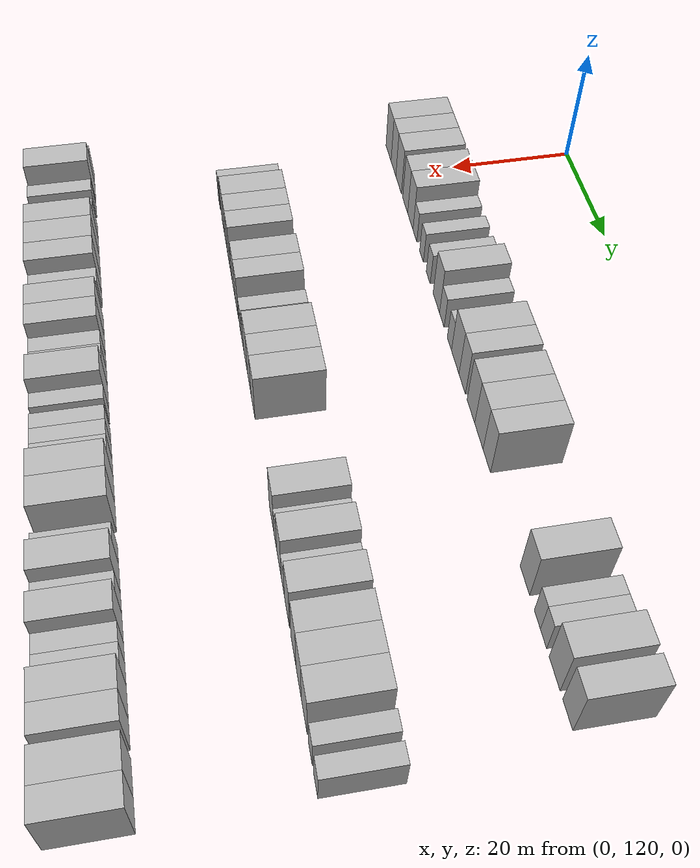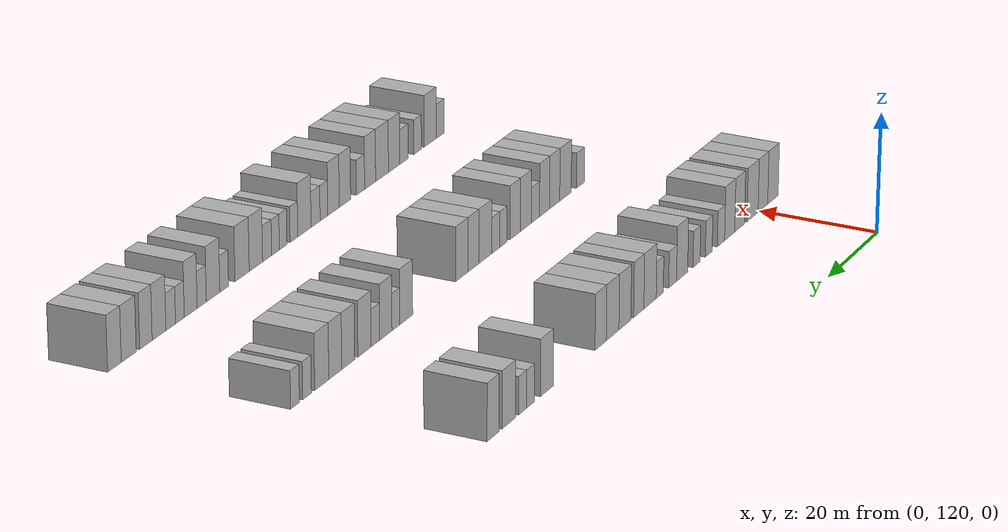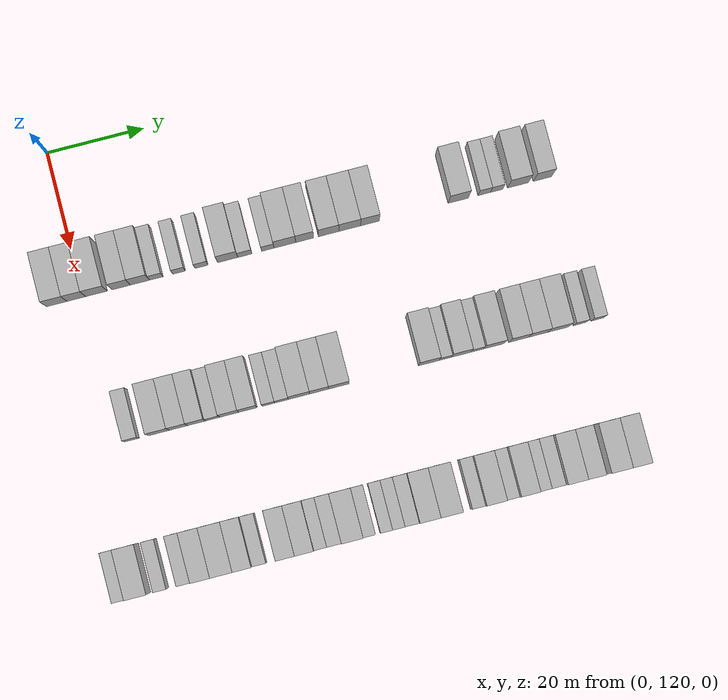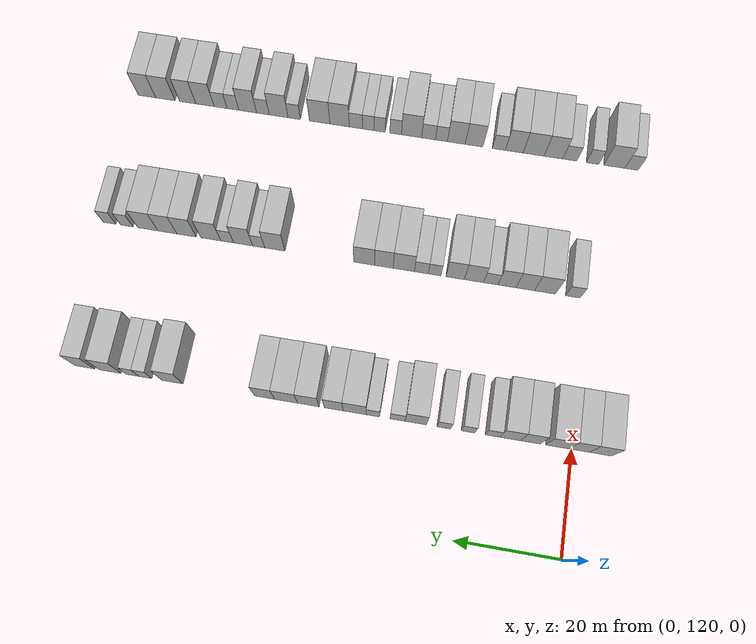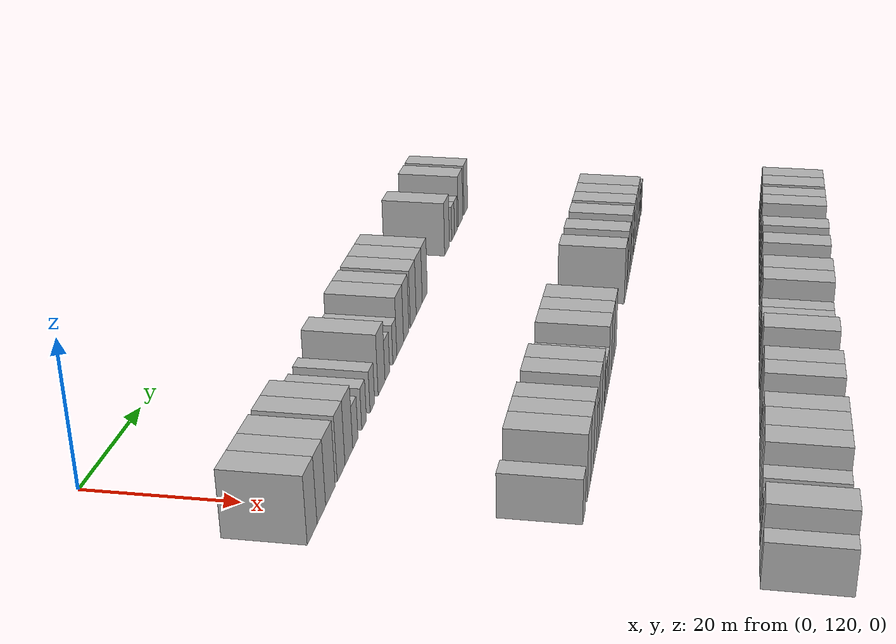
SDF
<sdf version="1.6">
 <world name="default">
  <model name="building_145">
   <static>1</static>
   <pose>25.0000 114.6661 0 0.000000 0.000000 0.000000</pose>
   <link name="link">
    <pose>0 0 4.50 0 0 0</pose>
    <collision name="collision"><geometry><box><size>10.0000 4.2118 9.0000</size></box></geometry></collision>
    <visual name="visual">
     <cast_shadows>0</cast_shadows>
     <geometry><box><size>10.0000 4.2118 9.0000</size></box></geometry>
     <material>
      <script>
       <uri>model://HANNAS_wall/materials/scripts</uri>
       <uri>model://HANNAS_wall/materials/textures</uri>
       <name>vrc/HANNAS_wall</name>
      </script>
     </material>
    </visual>
   </link>
  </model>
  <model name="building_146">
   <static>1</static>
   <pose>25.0000 118.6815 0 0.000000 0.000000 0.000000</pose>
   <link name="link">
    <pose>0 0 4.50 0 0 0</pose>
    <collision name="collision"><geometry><box><size>10.0000 3.8190 9.0000</size></box></geometry></collision>
    <visual name="visual">
     <cast_shadows>0</cast_shadows>
     <geometry><box><size>10.0000 3.8190 9.0000</size></box></geometry>
     <material>
      <script>
       <uri>model://HANNAS_wall/materials/scripts</uri>
       <uri>model://HANNAS_wall/materials/textures</uri>
       <name>vrc/HANNAS_wall</name>
      </script>
     </material>
    </visual>
   </link>
  </model>
  <model name="building_147">
   <static>1</static>
   <pose>25.0000 122.7910 0 0.000000 0.000000 0.000000</pose>
   <link name="link">
    <pose>0 0 4.50 0 0 0</pose>
    <collision name="collision"><geometry><box><size>10.0000 4.3998 9.0000</size></box></geometry></collision>
    <visual name="visual">
     <cast_shadows>0</cast_shadows>
     <geometry><box><size>10.0000 4.3998 9.0000</size></box></geometry>
     <material>
      <script>
       <uri>model://HANNAS_wall/materials/scripts</uri>
       <uri>model://HANNAS_wall/materials/textures</uri>
       <name>vrc/HANNAS_wall</name>
      </script>
     </material>
    </visual>
   </link>
  </model>
  <model name="building_148">
   <static>1</static>
   <pose>25.0000 127.8787 0 0.000000 0.000000 0.000000</pose>
   <link name="link">
    <pose>0 0 4.50 0 0 0</pose>
    <collision name="collision"><geometry><box><size>10.0000 3.7756 9.0000</size></box></geometry></collision>
    <visual name="visual">
     <cast_shadows>0</cast_shadows>
     <geometry><box><size>10.0000 3.7756 9.0000</size></box></geometry>
     <material>
      <script>
       <uri>model://HANNAS_wall/materials/scripts</uri>
       <uri>model://HANNAS_wall/materials/textures</uri>
       <name>vrc/HANNAS_wall</name>
      </script>
     </material>
    </visual>
   </link>
  </model>
  <model name="building_149">
   <static>1</static>
   <pose>25.0000 131.7306 0 0.000000 0.000000 0.000000</pose>
   <link name="link">
    <pose>0 0 4.50 0 0 0</pose>
    <collision name="collision"><geometry><box><size>10.0000 3.9283 9.0000</size></box></geometry></collision>
    <visual name="visual">
     <cast_shadows>0</cast_shadows>
     <geometry><box><size>10.0000 3.9283 9.0000</size></box></geometry>
     <material>
      <script>
       <uri>model://HANNAS_wall/materials/scripts</uri>
       <uri>model://HANNAS_wall/materials/textures</uri>
       <name>vrc/HANNAS_wall</name>
      </script>
     </material>
    </visual>
   </link>
  </model>
  <model name="building_150">
   <static>1</static>
   <pose>25.0000 135.0770 0 0.000000 0.000000 0.000000</pose>
   <link name="link">
    <pose>0 0 3.00 0 0 0</pose>
    <collision name="collision"><geometry><box><size>10.0000 2.7645 6.0000</size></box></geometry></collision>
    <visual name="visual">
     <cast_shadows>0</cast_shadows>
     <geometry><box><size>10.0000 2.7645 6.0000</size></box></geometry>
     <material>
      <script>
       <uri>model://HANNAS_wall/materials/scripts</uri>
       <uri>model://HANNAS_wall/materials/textures</uri>
       <name>vrc/HANNAS_wall</name>
      </script>
     </material>
    </visual>
   </link>
  </model>
  <model name="building_151">
   <static>1</static>
   <pose>25.0000 139.7506 0 0.000000 0.000000 0.000000</pose>
   <link name="link">
    <pose>0 0 3.00 0 0 0</pose>
    <collision name="collision"><geometry><box><size>10.0000 2.5826 6.0000</size></box></geometry></collision>
    <visual name="visual">
     <cast_shadows>0</cast_shadows>
     <geometry><box><size>10.0000 2.5826 6.0000</size></box></geometry>
     <material>
      <script>
       <uri>model://HANNAS_wall/materials/scripts</uri>
       <uri>model://HANNAS_wall/materials/textures</uri>
       <name>vrc/HANNAS_wall</name>
      </script>
     </material>
    </visual>
   </link>
  </model>
  <model name="building_152">
   <static>1</static>
   <pose>25.0000 144.3665 0 0.000000 0.000000 0.000000</pose>
   <link name="link">
    <pose>0 0 3.00 0 0 0</pose>
    <collision name="collision"><geometry><box><size>10.0000 2.6494 6.0000</size></box></geometry></collision>
    <visual name="visual">
     <cast_shadows>0</cast_shadows>
     <geometry><box><size>10.0000 2.6494 6.0000</size></box></geometry>
     <material>
      <script>
       <uri>model://HANNAS_wall/materials/scripts</uri>
       <uri>model://HANNAS_wall/materials/textures</uri>
       <name>vrc/HANNAS_wall</name>
      </script>
     </material>
    </visual>
   </link>
  </model>
  <model name="building_153">
   <static>1</static>
   <pose>25.0000 149.7480 0 0.000000 0.000000 0.000000</pose>
   <link name="link">
    <pose>0 0 4.50 0 0 0</pose>
    <collision name="collision"><geometry><box><size>10.0000 4.1134 9.0000</size></box></geometry></collision>
    <visual name="visual">
     <cast_shadows>0</cast_shadows>
     <geometry><box><size>10.0000 4.1134 9.0000</size></box></geometry>
     <material>
      <script>
       <uri>model://HANNAS_wall/materials/scripts</uri>
       <uri>model://HANNAS_wall/materials/textures</uri>
       <name>vrc/HANNAS_wall</name>
      </script>
     </material>
    </visual>
   </link>
  </model>
  <model name="building_154">
   <static>1</static>
   <pose>25.0000 153.2562 0 0.000000 0.000000 0.000000</pose>
   <link name="link">
    <pose>0 0 3.00 0 0 0</pose>
    <collision name="collision"><geometry><box><size>10.0000 2.9031 6.0000</size></box></geometry></collision>
    <visual name="visual">
     <cast_shadows>0</cast_shadows>
     <geometry><box><size>10.0000 2.9031 6.0000</size></box></geometry>
     <material>
      <script>
       <uri>model://HANNAS_wall/materials/scripts</uri>
       <uri>model://HANNAS_wall/materials/textures</uri>
       <name>vrc/HANNAS_wall</name>
      </script>
     </material>
    </visual>
   </link>
  </model>
  <model name="building_155">
   <static>1</static>
   <pose>25.0000 157.9871 0 0.000000 0.000000 0.000000</pose>
   <link name="link">
    <pose>0 0 3.00 0 0 0</pose>
    <collision name="collision"><geometry><box><size>10.0000 2.5587 6.0000</size></box></geometry></collision>
    <visual name="visual">
     <cast_shadows>0</cast_shadows>
     <geometry><box><size>10.0000 2.5587 6.0000</size></box></geometry>
     <material>
      <script>
       <uri>model://HANNAS_wall/materials/scripts</uri>
       <uri>model://HANNAS_wall/materials/textures</uri>
       <name>vrc/HANNAS_wall</name>
      </script>
     </material>
    </visual>
   </link>
  </model>
  <model name="building_156">
   <static>1</static>
   <pose>25.0000 161.5023 0 0.000000 0.000000 0.000000</pose>
   <link name="link">
    <pose>0 0 4.50 0 0 0</pose>
    <collision name="collision"><geometry><box><size>10.0000 4.4717 9.0000</size></box></geometry></collision>
    <visual name="visual">
     <cast_shadows>0</cast_shadows>
     <geometry><box><size>10.0000 4.4717 9.0000</size></box></geometry>
     <material>
      <script>
       <uri>model://HANNAS_wall/materials/scripts</uri>
       <uri>model://HANNAS_wall/materials/textures</uri>
       <name>vrc/HANNAS_wall</name>
      </script>
     </material>
    </visual>
   </link>
  </model>
  <model name="building_157">
   <static>1</static>
   <pose>25.0000 165.5705 0 0.000000 0.000000 0.000000</pose>
   <link name="link">
    <pose>0 0 4.50 0 0 0</pose>
    <collision name="collision"><geometry><box><size>10.0000 3.6647 9.0000</size></box></geometry></collision>
    <visual name="visual">
     <cast_shadows>0</cast_shadows>
     <geometry><box><size>10.0000 3.6647 9.0000</size></box></geometry>
     <material>
      <script>
       <uri>model://HANNAS_wall/materials/scripts</uri>
       <uri>model://HANNAS_wall/materials/textures</uri>
       <name>vrc/HANNAS_wall</name>
      </script>
     </material>
    </visual>
   </link>
  </model>
  <model name="building_158">
   <static>1</static>
   <pose>25.0000 170.4959 0 0.000000 0.000000 0.000000</pose>
   <link name="link">
    <pose>0 0 4.50 0 0 0</pose>
    <collision name="collision"><geometry><box><size>10.0000 4.1862 9.0000</size></box></geometry></collision>
    <visual name="visual">
     <cast_shadows>0</cast_shadows>
     <geometry><box><size>10.0000 4.1862 9.0000</size></box></geometry>
     <material>
      <script>
       <uri>model://HANNAS_wall/materials/scripts</uri>
       <uri>model://HANNAS_wall/materials/textures</uri>
       <name>vrc/HANNAS_wall</name>
      </script>
     </material>
    </visual>
   </link>
  </model>
  <model name="building_159">
   <static>1</static>
   <pose>25.0000 174.8231 0 0.000000 0.000000 0.000000</pose>
   <link name="link">
    <pose>0 0 4.50 0 0 0</pose>
    <collision name="collision"><geometry><box><size>10.0000 4.4682 9.0000</size></box></geometry></collision>
    <visual name="visual">
     <cast_shadows>0</cast_shadows>
     <geometry><box><size>10.0000 4.4682 9.0000</size></box></geometry>
     <material>
      <script>
       <uri>model://HANNAS_wall/materials/scripts</uri>
       <uri>model://HANNAS_wall/materials/textures</uri>
       <name>vrc/HANNAS_wall</name>
      </script>
     </material>
    </visual>
   </link>
  </model>
  <model name="building_160">
   <static>1</static>
   <pose>25.0000 178.9884 0 0.000000 0.000000 0.000000</pose>
   <link name="link">
    <pose>0 0 4.50 0 0 0</pose>
    <collision name="collision"><geometry><box><size>10.0000 3.8625 9.0000</size></box></geometry></collision>
    <visual name="visual">
     <cast_shadows>0</cast_shadows>
     <geometry><box><size>10.0000 3.8625 9.0000</size></box></geometry>
     <material>
      <script>
       <uri>model://HANNAS_wall/materials/scripts</uri>
       <uri>model://HANNAS_wall/materials/textures</uri>
       <name>vrc/HANNAS_wall</name>
      </script>
     </material>
    </visual>
   </link>
  </model>
  <model name="building_161">
   <static>1</static>
   <pose>25.0000 197.2277 0 0.000000 0.000000 0.000000</pose>
   <link name="link">
    <pose>0 0 4.50 0 0 0</pose>
    <collision name="collision"><geometry><box><size>10.0000 4.2054 9.0000</size></box></geometry></collision>
    <visual name="visual">
     <cast_shadows>0</cast_shadows>
     <geometry><box><size>10.0000 4.2054 9.0000</size></box></geometry>
     <material>
      <script>
       <uri>model://HANNAS_wall/materials/scripts</uri>
       <uri>model://HANNAS_wall/materials/textures</uri>
       <name>vrc/HANNAS_wall</name>
      </script>
     </material>
    </visual>
   </link>
  </model>
  <model name="building_162">
   <static>1</static>
   <pose>25.0000 202.6130 0 0.000000 0.000000 0.000000</pose>
   <link name="link">
    <pose>0 0 3.00 0 0 0</pose>
    <collision name="collision"><geometry><box><size>10.0000 2.5653 6.0000</size></box></geometry></collision>
    <visual name="visual">
     <cast_shadows>0</cast_shadows>
     <geometry><box><size>10.0000 2.5653 6.0000</size></box></geometry>
     <material>
      <script>
       <uri>model://HANNAS_wall/materials/scripts</uri>
       <uri>model://HANNAS_wall/materials/textures</uri>
       <name>vrc/HANNAS_wall</name>
      </script>
     </material>
    </visual>
   </link>
  </model>
  <model name="building_163">
   <static>1</static>
   <pose>25.0000 205.1648 0 0.000000 0.000000 0.000000</pose>
   <link name="link">
    <pose>0 0 3.00 0 0 0</pose>
    <collision name="collision"><geometry><box><size>10.0000 2.5384 6.0000</size></box></geometry></collision>
    <visual name="visual">
     <cast_shadows>0</cast_shadows>
     <geometry><box><size>10.0000 2.5384 6.0000</size></box></geometry>
     <material>
      <script>
       <uri>model://HANNAS_wall/materials/scripts</uri>
       <uri>model://HANNAS_wall/materials/textures</uri>
       <name>vrc/HANNAS_wall</name>
      </script>
     </material>
    </visual>
   </link>
  </model>
  <model name="building_164">
   <static>1</static>
   <pose>25.0000 209.5976 0 0.000000 0.000000 0.000000</pose>
   <link name="link">
    <pose>0 0 4.50 0 0 0</pose>
    <collision name="collision"><geometry><box><size>10.0000 4.3273 9.0000</size></box></geometry></collision>
    <visual name="visual">
     <cast_shadows>0</cast_shadows>
     <geometry><box><size>10.0000 4.3273 9.0000</size></box></geometry>
     <material>
      <script>
       <uri>model://HANNAS_wall/materials/scripts</uri>
       <uri>model://HANNAS_wall/materials/textures</uri>
       <name>vrc/HANNAS_wall</name>
      </script>
     </material>
    </visual>
   </link>
  </model>
  <model name="building_165">
   <static>1</static>
   <pose>25.0000 214.6560 0 0.000000 0.000000 0.000000</pose>
   <link name="link">
    <pose>0 0 4.50 0 0 0</pose>
    <collision name="collision"><geometry><box><size>10.0000 3.7894 9.0000</size></box></geometry></collision>
    <visual name="visual">
     <cast_shadows>0</cast_shadows>
     <geometry><box><size>10.0000 3.7894 9.0000</size></box></geometry>
     <material>
      <script>
       <uri>model://HANNAS_wall/materials/scripts</uri>
       <uri>model://HANNAS_wall/materials/textures</uri>
       <name>vrc/HANNAS_wall</name>
      </script>
     </material>
    </visual>
   </link>
  </model>
  <model name="building_364">
   <static>1</static>
   <pose>55.0000 122.5554 0 0.000000 0.000000 0.000000</pose>
   <link name="link">
    <pose>0 0 3.00 0 0 0</pose>
    <collision name="collision"><geometry><box><size>10.0000 2.9453 6.0000</size></box></geometry></collision>
    <visual name="visual">
     <cast_shadows>0</cast_shadows>
     <geometry><box><size>10.0000 2.9453 6.0000</size></box></geometry>
     <material>
      <script>
       <uri>model://HANNAS_wall/materials/scripts</uri>
       <uri>model://HANNAS_wall/materials/textures</uri>
       <name>vrc/HANNAS_wall</name>
      </script>
     </material>
    </visual>
   </link>
  </model>
  <model name="building_365">
   <static>1</static>
   <pose>55.0000 128.1410 0 0.000000 0.000000 0.000000</pose>
   <link name="link">
    <pose>0 0 4.50 0 0 0</pose>
    <collision name="collision"><geometry><box><size>10.0000 4.2260 9.0000</size></box></geometry></collision>
    <visual name="visual">
     <cast_shadows>0</cast_shadows>
     <geometry><box><size>10.0000 4.2260 9.0000</size></box></geometry>
     <material>
      <script>
       <uri>model://HANNAS_wall/materials/scripts</uri>
       <uri>model://HANNAS_wall/materials/textures</uri>
       <name>vrc/HANNAS_wall</name>
      </script>
     </material>
    </visual>
   </link>
  </model>
  <model name="building_366">
   <static>1</static>
   <pose>55.0000 132.1128 0 0.000000 0.000000 0.000000</pose>
   <link name="link">
    <pose>0 0 4.50 0 0 0</pose>
    <collision name="collision"><geometry><box><size>10.0000 3.7174 9.0000</size></box></geometry></collision>
    <visual name="visual">
     <cast_shadows>0</cast_shadows>
     <geometry><box><size>10.0000 3.7174 9.0000</size></box></geometry>
     <material>
      <script>
       <uri>model://HANNAS_wall/materials/scripts</uri>
       <uri>model://HANNAS_wall/materials/textures</uri>
       <name>vrc/HANNAS_wall</name>
      </script>
     </material>
    </visual>
   </link>
  </model>
  <model name="building_367">
   <static>1</static>
   <pose>55.0000 135.7934 0 0.000000 0.000000 0.000000</pose>
   <link name="link">
    <pose>0 0 4.50 0 0 0</pose>
    <collision name="collision"><geometry><box><size>10.0000 3.6438 9.0000</size></box></geometry></collision>
    <visual name="visual">
     <cast_shadows>0</cast_shadows>
     <geometry><box><size>10.0000 3.6438 9.0000</size></box></geometry>
     <material>
      <script>
       <uri>model://HANNAS_wall/materials/scripts</uri>
       <uri>model://HANNAS_wall/materials/textures</uri>
       <name>vrc/HANNAS_wall</name>
      </script>
     </material>
    </visual>
   </link>
  </model>
  <model name="building_368">
   <static>1</static>
   <pose>55.0000 139.0617 0 0.000000 0.000000 0.000000</pose>
   <link name="link">
    <pose>0 0 3.00 0 0 0</pose>
    <collision name="collision"><geometry><box><size>10.0000 2.8927 6.0000</size></box></geometry></collision>
    <visual name="visual">
     <cast_shadows>0</cast_shadows>
     <geometry><box><size>10.0000 2.8927 6.0000</size></box></geometry>
     <material>
      <script>
       <uri>model://HANNAS_wall/materials/scripts</uri>
       <uri>model://HANNAS_wall/materials/textures</uri>
       <name>vrc/HANNAS_wall</name>
      </script>
     </material>
    </visual>
   </link>
  </model>
  <model name="building_369">
   <static>1</static>
   <pose>55.0000 142.4565 0 0.000000 0.000000 0.000000</pose>
   <link name="link">
    <pose>0 0 4.50 0 0 0</pose>
    <collision name="collision"><geometry><box><size>10.0000 3.8969 9.0000</size></box></geometry></collision>
    <visual name="visual">
     <cast_shadows>0</cast_shadows>
     <geometry><box><size>10.0000 3.8969 9.0000</size></box></geometry>
     <material>
      <script>
       <uri>model://HANNAS_wall/materials/scripts</uri>
       <uri>model://HANNAS_wall/materials/textures</uri>
       <name>vrc/HANNAS_wall</name>
      </script>
     </material>
    </visual>
   </link>
  </model>
  <model name="building_370">
   <static>1</static>
   <pose>55.0000 146.2730 0 0.000000 0.000000 0.000000</pose>
   <link name="link">
    <pose>0 0 4.50 0 0 0</pose>
    <collision name="collision"><geometry><box><size>10.0000 3.7361 9.0000</size></box></geometry></collision>
    <visual name="visual">
     <cast_shadows>0</cast_shadows>
     <geometry><box><size>10.0000 3.7361 9.0000</size></box></geometry>
     <material>
      <script>
       <uri>model://HANNAS_wall/materials/scripts</uri>
       <uri>model://HANNAS_wall/materials/textures</uri>
       <name>vrc/HANNAS_wall</name>
      </script>
     </material>
    </visual>
   </link>
  </model>
  <model name="building_371">
   <static>1</static>
   <pose>55.0000 150.4378 0 0.000000 0.000000 0.000000</pose>
   <link name="link">
    <pose>0 0 3.00 0 0 0</pose>
    <collision name="collision"><geometry><box><size>10.0000 2.5934 6.0000</size></box></geometry></collision>
    <visual name="visual">
     <cast_shadows>0</cast_shadows>
     <geometry><box><size>10.0000 2.5934 6.0000</size></box></geometry>
     <material>
      <script>
       <uri>model://HANNAS_wall/materials/scripts</uri>
       <uri>model://HANNAS_wall/materials/textures</uri>
       <name>vrc/HANNAS_wall</name>
      </script>
     </material>
    </visual>
   </link>
  </model>
  <model name="building_372">
   <static>1</static>
   <pose>55.0000 153.1449 0 0.000000 0.000000 0.000000</pose>
   <link name="link">
    <pose>0 0 3.00 0 0 0</pose>
    <collision name="collision"><geometry><box><size>10.0000 2.8208 6.0000</size></box></geometry></collision>
    <visual name="visual">
     <cast_shadows>0</cast_shadows>
     <geometry><box><size>10.0000 2.8208 6.0000</size></box></geometry>
     <material>
      <script>
       <uri>model://HANNAS_wall/materials/scripts</uri>
       <uri>model://HANNAS_wall/materials/textures</uri>
       <name>vrc/HANNAS_wall</name>
      </script>
     </material>
    </visual>
   </link>
  </model>
  <model name="building_373">
   <static>1</static>
   <pose>55.0000 156.7132 0 0.000000 0.000000 0.000000</pose>
   <link name="link">
    <pose>0 0 4.50 0 0 0</pose>
    <collision name="collision"><geometry><box><size>10.0000 4.3158 9.0000</size></box></geometry></collision>
    <visual name="visual">
     <cast_shadows>0</cast_shadows>
     <geometry><box><size>10.0000 4.3158 9.0000</size></box></geometry>
     <material>
      <script>
       <uri>model://HANNAS_wall/materials/scripts</uri>
       <uri>model://HANNAS_wall/materials/textures</uri>
       <name>vrc/HANNAS_wall</name>
      </script>
     </material>
    </visual>
   </link>
  </model>
  <model name="building_374">
   <static>1</static>
   <pose>55.0000 160.7890 0 0.000000 0.000000 0.000000</pose>
   <link name="link">
    <pose>0 0 4.50 0 0 0</pose>
    <collision name="collision"><geometry><box><size>10.0000 3.8359 9.0000</size></box></geometry></collision>
    <visual name="visual">
     <cast_shadows>0</cast_shadows>
     <geometry><box><size>10.0000 3.8359 9.0000</size></box></geometry>
     <material>
      <script>
       <uri>model://HANNAS_wall/materials/scripts</uri>
       <uri>model://HANNAS_wall/materials/textures</uri>
       <name>vrc/HANNAS_wall</name>
      </script>
     </material>
    </visual>
   </link>
  </model>
  <model name="building_375">
   <static>1</static>
   <pose>55.0000 164.8096 0 0.000000 0.000000 0.000000</pose>
   <link name="link">
    <pose>0 0 4.50 0 0 0</pose>
    <collision name="collision"><geometry><box><size>10.0000 4.2052 9.0000</size></box></geometry></collision>
    <visual name="visual">
     <cast_shadows>0</cast_shadows>
     <geometry><box><size>10.0000 4.2052 9.0000</size></box></geometry>
     <material>
      <script>
       <uri>model://HANNAS_wall/materials/scripts</uri>
       <uri>model://HANNAS_wall/materials/textures</uri>
       <name>vrc/HANNAS_wall</name>
      </script>
     </material>
    </visual>
   </link>
  </model>
  <model name="building_376">
   <static>1</static>
   <pose>55.0000 183.2323 0 0.000000 0.000000 0.000000</pose>
   <link name="link">
    <pose>0 0 4.50 0 0 0</pose>
    <collision name="collision"><geometry><box><size>10.0000 4.2134 9.0000</size></box></geometry></collision>
    <visual name="visual">
     <cast_shadows>0</cast_shadows>
     <geometry><box><size>10.0000 4.2134 9.0000</size></box></geometry>
     <material>
      <script>
       <uri>model://HANNAS_wall/materials/scripts</uri>
       <uri>model://HANNAS_wall/materials/textures</uri>
       <name>vrc/HANNAS_wall</name>
      </script>
     </material>
    </visual>
   </link>
  </model>
  <model name="building_377">
   <static>1</static>
   <pose>55.0000 186.5932 0 0.000000 0.000000 0.000000</pose>
   <link name="link">
    <pose>0 0 3.00 0 0 0</pose>
    <collision name="collision"><geometry><box><size>10.0000 2.5084 6.0000</size></box></geometry></collision>
    <visual name="visual">
     <cast_shadows>0</cast_shadows>
     <geometry><box><size>10.0000 2.5084 6.0000</size></box></geometry>
     <material>
      <script>
       <uri>model://HANNAS_wall/materials/scripts</uri>
       <uri>model://HANNAS_wall/materials/textures</uri>
       <name>vrc/HANNAS_wall</name>
      </script>
     </material>
    </visual>
   </link>
  </model>
  <model name="building_378">
   <static>1</static>
   <pose>55.0000 189.8190 0 0.000000 0.000000 0.000000</pose>
   <link name="link">
    <pose>0 0 4.50 0 0 0</pose>
    <collision name="collision"><geometry><box><size>10.0000 3.9432 9.0000</size></box></geometry></collision>
    <visual name="visual">
     <cast_shadows>0</cast_shadows>
     <geometry><box><size>10.0000 3.9432 9.0000</size></box></geometry>
     <material>
      <script>
       <uri>model://HANNAS_wall/materials/scripts</uri>
       <uri>model://HANNAS_wall/materials/textures</uri>
       <name>vrc/HANNAS_wall</name>
      </script>
     </material>
    </visual>
   </link>
  </model>
  <model name="building_379">
   <static>1</static>
   <pose>55.0000 193.1334 0 0.000000 0.000000 0.000000</pose>
   <link name="link">
    <pose>0 0 3.00 0 0 0</pose>
    <collision name="collision"><geometry><box><size>10.0000 2.6855 6.0000</size></box></geometry></collision>
    <visual name="visual">
     <cast_shadows>0</cast_shadows>
     <geometry><box><size>10.0000 2.6855 6.0000</size></box></geometry>
     <material>
      <script>
       <uri>model://HANNAS_wall/materials/scripts</uri>
       <uri>model://HANNAS_wall/materials/textures</uri>
       <name>vrc/HANNAS_wall</name>
      </script>
     </material>
    </visual>
   </link>
  </model>
  <model name="building_380">
   <static>1</static>
   <pose>55.0000 196.5611 0 0.000000 0.000000 0.000000</pose>
   <link name="link">
    <pose>0 0 4.50 0 0 0</pose>
    <collision name="collision"><geometry><box><size>10.0000 4.1699 9.0000</size></box></geometry></collision>
    <visual name="visual">
     <cast_shadows>0</cast_shadows>
     <geometry><box><size>10.0000 4.1699 9.0000</size></box></geometry>
     <material>
      <script>
       <uri>model://HANNAS_wall/materials/scripts</uri>
       <uri>model://HANNAS_wall/materials/textures</uri>
       <name>vrc/HANNAS_wall</name>
      </script>
     </material>
    </visual>
   </link>
  </model>
  <model name="building_381">
   <static>1</static>
   <pose>55.0000 201.6565 0 0.000000 0.000000 0.000000</pose>
   <link name="link">
    <pose>0 0 4.50 0 0 0</pose>
    <collision name="collision"><geometry><box><size>10.0000 4.0209 9.0000</size></box></geometry></collision>
    <visual name="visual">
     <cast_shadows>0</cast_shadows>
     <geometry><box><size>10.0000 4.0209 9.0000</size></box></geometry>
     <material>
      <script>
       <uri>model://HANNAS_wall/materials/scripts</uri>
       <uri>model://HANNAS_wall/materials/textures</uri>
       <name>vrc/HANNAS_wall</name>
      </script>
     </material>
    </visual>
   </link>
  </model>
  <model name="building_382">
   <static>1</static>
   <pose>55.0000 205.6579 0 0.000000 0.000000 0.000000</pose>
   <link name="link">
    <pose>0 0 4.50 0 0 0</pose>
    <collision name="collision"><geometry><box><size>10.0000 3.9820 9.0000</size></box></geometry></collision>
    <visual name="visual">
     <cast_shadows>0</cast_shadows>
     <geometry><box><size>10.0000 3.9820 9.0000</size></box></geometry>
     <material>
      <script>
       <uri>model://HANNAS_wall/materials/scripts</uri>
       <uri>model://HANNAS_wall/materials/textures</uri>
       <name>vrc/HANNAS_wall</name>
      </script>
     </material>
    </visual>
   </link>
  </model>
  <model name="building_383">
   <static>1</static>
   <pose>55.0000 209.7962 0 0.000000 0.000000 0.000000</pose>
   <link name="link">
    <pose>0 0 4.50 0 0 0</pose>
    <collision name="collision"><geometry><box><size>10.0000 4.2946 9.0000</size></box></geometry></collision>
    <visual name="visual">
     <cast_shadows>0</cast_shadows>
     <geometry><box><size>10.0000 4.2946 9.0000</size></box></geometry>
     <material>
      <script>
       <uri>model://HANNAS_wall/materials/scripts</uri>
       <uri>model://HANNAS_wall/materials/textures</uri>
       <name>vrc/HANNAS_wall</name>
      </script>
     </material>
    </visual>
   </link>
  </model>
  <model name="building_384">
   <static>1</static>
   <pose>55.0000 214.2566 0 0.000000 0.000000 0.000000</pose>
   <link name="link">
    <pose>0 0 3.00 0 0 0</pose>
    <collision name="collision"><geometry><box><size>10.0000 2.6262 6.0000</size></box></geometry></collision>
    <visual name="visual">
     <cast_shadows>0</cast_shadows>
     <geometry><box><size>10.0000 2.6262 6.0000</size></box></geometry>
     <material>
      <script>
       <uri>model://HANNAS_wall/materials/scripts</uri>
       <uri>model://HANNAS_wall/materials/textures</uri>
       <name>vrc/HANNAS_wall</name>
      </script>
     </material>
    </visual>
   </link>
  </model>
  <model name="building_385">
   <static>1</static>
   <pose>55.0000 217.8919 0 0.000000 0.000000 0.000000</pose>
   <link name="link">
    <pose>0 0 3.00 0 0 0</pose>
    <collision name="collision"><geometry><box><size>10.0000 2.6444 6.0000</size></box></geometry></collision>
    <visual name="visual">
     <cast_shadows>0</cast_shadows>
     <geometry><box><size>10.0000 2.6444 6.0000</size></box></geometry>
     <material>
      <script>
       <uri>model://HANNAS_wall/materials/scripts</uri>
       <uri>model://HANNAS_wall/materials/textures</uri>
       <name>vrc/HANNAS_wall</name>
      </script>
     </material>
    </visual>
   </link>
  </model>
  <model name="building_593">
   <static>1</static>
   <pose>85.0000 112.9464 0 0.000000 0.000000 0.000000</pose>
   <link name="link">
    <pose>0 0 3.00 0 0 0</pose>
    <collision name="collision"><geometry><box><size>10.0000 2.8118 6.0000</size></box></geometry></collision>
    <visual name="visual">
     <cast_shadows>0</cast_shadows>
     <geometry><box><size>10.0000 2.8118 6.0000</size></box></geometry>
     <material>
      <script>
       <uri>model://HANNAS_wall/materials/scripts</uri>
       <uri>model://HANNAS_wall/materials/textures</uri>
       <name>vrc/HANNAS_wall</name>
      </script>
     </material>
    </visual>
   </link>
  </model>
  <model name="building_594">
   <static>1</static>
   <pose>85.0000 116.5709 0 0.000000 0.000000 0.000000</pose>
   <link name="link">
    <pose>0 0 4.50 0 0 0</pose>
    <collision name="collision"><geometry><box><size>10.0000 4.4371 9.0000</size></box></geometry></collision>
    <visual name="visual">
     <cast_shadows>0</cast_shadows>
     <geometry><box><size>10.0000 4.4371 9.0000</size></box></geometry>
     <material>
      <script>
       <uri>model://HANNAS_wall/materials/scripts</uri>
       <uri>model://HANNAS_wall/materials/textures</uri>
       <name>vrc/HANNAS_wall</name>
      </script>
     </material>
    </visual>
   </link>
  </model>
  <model name="building_595">
   <static>1</static>
   <pose>85.0000 121.1180 0 0.000000 0.000000 0.000000</pose>
   <link name="link">
    <pose>0 0 3.00 0 0 0</pose>
    <collision name="collision"><geometry><box><size>10.0000 2.6570 6.0000</size></box></geometry></collision>
    <visual name="visual">
     <cast_shadows>0</cast_shadows>
     <geometry><box><size>10.0000 2.6570 6.0000</size></box></geometry>
     <material>
      <script>
       <uri>model://HANNAS_wall/materials/scripts</uri>
       <uri>model://HANNAS_wall/materials/textures</uri>
       <name>vrc/HANNAS_wall</name>
      </script>
     </material>
    </visual>
   </link>
  </model>
  <model name="building_596">
   <static>1</static>
   <pose>85.0000 125.9358 0 0.000000 0.000000 0.000000</pose>
   <link name="link">
    <pose>0 0 3.00 0 0 0</pose>
    <collision name="collision"><geometry><box><size>10.0000 2.9787 6.0000</size></box></geometry></collision>
    <visual name="visual">
     <cast_shadows>0</cast_shadows>
     <geometry><box><size>10.0000 2.9787 6.0000</size></box></geometry>
     <material>
      <script>
       <uri>model://HANNAS_wall/materials/scripts</uri>
       <uri>model://HANNAS_wall/materials/textures</uri>
       <name>vrc/HANNAS_wall</name>
      </script>
     </material>
    </visual>
   </link>
  </model>
  <model name="building_597">
   <static>1</static>
   <pose>85.0000 129.4119 0 0.000000 0.000000 0.000000</pose>
   <link name="link">
    <pose>0 0 4.50 0 0 0</pose>
    <collision name="collision"><geometry><box><size>10.0000 3.9734 9.0000</size></box></geometry></collision>
    <visual name="visual">
     <cast_shadows>0</cast_shadows>
     <geometry><box><size>10.0000 3.9734 9.0000</size></box></geometry>
     <material>
      <script>
       <uri>model://HANNAS_wall/materials/scripts</uri>
       <uri>model://HANNAS_wall/materials/textures</uri>
       <name>vrc/HANNAS_wall</name>
      </script>
     </material>
    </visual>
   </link>
  </model>
  <model name="building_598">
   <static>1</static>
   <pose>85.0000 133.6250 0 0.000000 0.000000 0.000000</pose>
   <link name="link">
    <pose>0 0 4.50 0 0 0</pose>
    <collision name="collision"><geometry><box><size>10.0000 4.4528 9.0000</size></box></geometry></collision>
    <visual name="visual">
     <cast_shadows>0</cast_shadows>
     <geometry><box><size>10.0000 4.4528 9.0000</size></box></geometry>
     <material>
      <script>
       <uri>model://HANNAS_wall/materials/scripts</uri>
       <uri>model://HANNAS_wall/materials/textures</uri>
       <name>vrc/HANNAS_wall</name>
      </script>
     </material>
    </visual>
   </link>
  </model>
  <model name="building_599">
   <static>1</static>
   <pose>85.0000 137.7255 0 0.000000 0.000000 0.000000</pose>
   <link name="link">
    <pose>0 0 4.50 0 0 0</pose>
    <collision name="collision"><geometry><box><size>10.0000 3.7481 9.0000</size></box></geometry></collision>
    <visual name="visual">
     <cast_shadows>0</cast_shadows>
     <geometry><box><size>10.0000 3.7481 9.0000</size></box></geometry>
     <material>
      <script>
       <uri>model://HANNAS_wall/materials/scripts</uri>
       <uri>model://HANNAS_wall/materials/textures</uri>
       <name>vrc/HANNAS_wall</name>
      </script>
     </material>
    </visual>
   </link>
  </model>
  <model name="building_600">
   <static>1</static>
   <pose>85.0000 140.9971 0 0.000000 0.000000 0.000000</pose>
   <link name="link">
    <pose>0 0 3.00 0 0 0</pose>
    <collision name="collision"><geometry><box><size>10.0000 2.7952 6.0000</size></box></geometry></collision>
    <visual name="visual">
     <cast_shadows>0</cast_shadows>
     <geometry><box><size>10.0000 2.7952 6.0000</size></box></geometry>
     <material>
      <script>
       <uri>model://HANNAS_wall/materials/scripts</uri>
       <uri>model://HANNAS_wall/materials/textures</uri>
       <name>vrc/HANNAS_wall</name>
      </script>
     </material>
    </visual>
   </link>
  </model>
  <model name="building_601">
   <static>1</static>
   <pose>85.0000 146.2999 0 0.000000 0.000000 0.000000</pose>
   <link name="link">
    <pose>0 0 4.50 0 0 0</pose>
    <collision name="collision"><geometry><box><size>10.0000 3.8105 9.0000</size></box></geometry></collision>
    <visual name="visual">
     <cast_shadows>0</cast_shadows>
     <geometry><box><size>10.0000 3.8105 9.0000</size></box></geometry>
     <material>
      <script>
       <uri>model://HANNAS_wall/materials/scripts</uri>
       <uri>model://HANNAS_wall/materials/textures</uri>
       <name>vrc/HANNAS_wall</name>
      </script>
     </material>
    </visual>
   </link>
  </model>
  <model name="building_602">
   <static>1</static>
   <pose>85.0000 150.1101 0 0.000000 0.000000 0.000000</pose>
   <link name="link">
    <pose>0 0 4.50 0 0 0</pose>
    <collision name="collision"><geometry><box><size>10.0000 3.8098 9.0000</size></box></geometry></collision>
    <visual name="visual">
     <cast_shadows>0</cast_shadows>
     <geometry><box><size>10.0000 3.8098 9.0000</size></box></geometry>
     <material>
      <script>
       <uri>model://HANNAS_wall/materials/scripts</uri>
       <uri>model://HANNAS_wall/materials/textures</uri>
       <name>vrc/HANNAS_wall</name>
      </script>
     </material>
    </visual>
   </link>
  </model>
  <model name="building_603">
   <static>1</static>
   <pose>85.0000 153.3013 0 0.000000 0.000000 0.000000</pose>
   <link name="link">
    <pose>0 0 3.00 0 0 0</pose>
    <collision name="collision"><geometry><box><size>10.0000 2.5728 6.0000</size></box></geometry></collision>
    <visual name="visual">
     <cast_shadows>0</cast_shadows>
     <geometry><box><size>10.0000 2.5728 6.0000</size></box></geometry>
     <material>
      <script>
       <uri>model://HANNAS_wall/materials/scripts</uri>
       <uri>model://HANNAS_wall/materials/textures</uri>
       <name>vrc/HANNAS_wall</name>
      </script>
     </material>
    </visual>
   </link>
  </model>
  <model name="building_604">
   <static>1</static>
   <pose>85.0000 156.0657 0 0.000000 0.000000 0.000000</pose>
   <link name="link">
    <pose>0 0 3.00 0 0 0</pose>
    <collision name="collision"><geometry><box><size>10.0000 2.9559 6.0000</size></box></geometry></collision>
    <visual name="visual">
     <cast_shadows>0</cast_shadows>
     <geometry><box><size>10.0000 2.9559 6.0000</size></box></geometry>
     <material>
      <script>
       <uri>model://HANNAS_wall/materials/scripts</uri>
       <uri>model://HANNAS_wall/materials/textures</uri>
       <name>vrc/HANNAS_wall</name>
      </script>
     </material>
    </visual>
   </link>
  </model>
  <model name="building_605">
   <static>1</static>
   <pose>85.0000 159.7173 0 0.000000 0.000000 0.000000</pose>
   <link name="link">
    <pose>0 0 4.50 0 0 0</pose>
    <collision name="collision"><geometry><box><size>10.0000 4.3473 9.0000</size></box></geometry></collision>
    <visual name="visual">
     <cast_shadows>0</cast_shadows>
     <geometry><box><size>10.0000 4.3473 9.0000</size></box></geometry>
     <material>
      <script>
       <uri>model://HANNAS_wall/materials/scripts</uri>
       <uri>model://HANNAS_wall/materials/textures</uri>
       <name>vrc/HANNAS_wall</name>
      </script>
     </material>
    </visual>
   </link>
  </model>
  <model name="building_606">
   <static>1</static>
   <pose>85.0000 163.1421 0 0.000000 0.000000 0.000000</pose>
   <link name="link">
    <pose>0 0 3.00 0 0 0</pose>
    <collision name="collision"><geometry><box><size>10.0000 2.5024 6.0000</size></box></geometry></collision>
    <visual name="visual">
     <cast_shadows>0</cast_shadows>
     <geometry><box><size>10.0000 2.5024 6.0000</size></box></geometry>
     <material>
      <script>
       <uri>model://HANNAS_wall/materials/scripts</uri>
       <uri>model://HANNAS_wall/materials/textures</uri>
       <name>vrc/HANNAS_wall</name>
      </script>
     </material>
    </visual>
   </link>
  </model>
  <model name="building_607">
   <static>1</static>
   <pose>85.0000 166.6172 0 0.000000 0.000000 0.000000</pose>
   <link name="link">
    <pose>0 0 3.00 0 0 0</pose>
    <collision name="collision"><geometry><box><size>10.0000 2.4478 6.0000</size></box></geometry></collision>
    <visual name="visual">
     <cast_shadows>0</cast_shadows>
     <geometry><box><size>10.0000 2.4478 6.0000</size></box></geometry>
     <material>
      <script>
       <uri>model://HANNAS_wall/materials/scripts</uri>
       <uri>model://HANNAS_wall/materials/textures</uri>
       <name>vrc/HANNAS_wall</name>
      </script>
     </material>
    </visual>
   </link>
  </model>
  <model name="building_608">
   <static>1</static>
   <pose>85.0000 169.0835 0 0.000000 0.000000 0.000000</pose>
   <link name="link">
    <pose>0 0 3.00 0 0 0</pose>
    <collision name="collision"><geometry><box><size>10.0000 2.4848 6.0000</size></box></geometry></collision>
    <visual name="visual">
     <cast_shadows>0</cast_shadows>
     <geometry><box><size>10.0000 2.4848 6.0000</size></box></geometry>
     <material>
      <script>
       <uri>model://HANNAS_wall/materials/scripts</uri>
       <uri>model://HANNAS_wall/materials/textures</uri>
       <name>vrc/HANNAS_wall</name>
      </script>
     </material>
    </visual>
   </link>
  </model>
  <model name="building_609">
   <static>1</static>
   <pose>85.0000 171.7627 0 0.000000 0.000000 0.000000</pose>
   <link name="link">
    <pose>0 0 3.00 0 0 0</pose>
    <collision name="collision"><geometry><box><size>10.0000 2.8736 6.0000</size></box></geometry></collision>
    <visual name="visual">
     <cast_shadows>0</cast_shadows>
     <geometry><box><size>10.0000 2.8736 6.0000</size></box></geometry>
     <material>
      <script>
       <uri>model://HANNAS_wall/materials/scripts</uri>
       <uri>model://HANNAS_wall/materials/textures</uri>
       <name>vrc/HANNAS_wall</name>
      </script>
     </material>
    </visual>
   </link>
  </model>
  <model name="building_610">
   <static>1</static>
   <pose>85.0000 175.2991 0 0.000000 0.000000 0.000000</pose>
   <link name="link">
    <pose>0 0 4.50 0 0 0</pose>
    <collision name="collision"><geometry><box><size>10.0000 4.1992 9.0000</size></box></geometry></collision>
    <visual name="visual">
     <cast_shadows>0</cast_shadows>
     <geometry><box><size>10.0000 4.1992 9.0000</size></box></geometry>
     <material>
      <script>
       <uri>model://HANNAS_wall/materials/scripts</uri>
       <uri>model://HANNAS_wall/materials/textures</uri>
       <name>vrc/HANNAS_wall</name>
      </script>
     </material>
    </visual>
   </link>
  </model>
  <model name="building_611">
   <static>1</static>
   <pose>85.0000 179.6279 0 0.000000 0.000000 0.000000</pose>
   <link name="link">
    <pose>0 0 4.50 0 0 0</pose>
    <collision name="collision"><geometry><box><size>10.0000 4.4585 9.0000</size></box></geometry></collision>
    <visual name="visual">
     <cast_shadows>0</cast_shadows>
     <geometry><box><size>10.0000 4.4585 9.0000</size></box></geometry>
     <material>
      <script>
       <uri>model://HANNAS_wall/materials/scripts</uri>
       <uri>model://HANNAS_wall/materials/textures</uri>
       <name>vrc/HANNAS_wall</name>
      </script>
     </material>
    </visual>
   </link>
  </model>
  <model name="building_612">
   <static>1</static>
   <pose>85.0000 185.1939 0 0.000000 0.000000 0.000000</pose>
   <link name="link">
    <pose>0 0 3.00 0 0 0</pose>
    <collision name="collision"><geometry><box><size>10.0000 2.6736 6.0000</size></box></geometry></collision>
    <visual name="visual">
     <cast_shadows>0</cast_shadows>
     <geometry><box><size>10.0000 2.6736 6.0000</size></box></geometry>
     <material>
      <script>
       <uri>model://HANNAS_wall/materials/scripts</uri>
       <uri>model://HANNAS_wall/materials/textures</uri>
       <name>vrc/HANNAS_wall</name>
      </script>
     </material>
    </visual>
   </link>
  </model>
  <model name="building_613">
   <static>1</static>
   <pose>85.0000 188.5895 0 0.000000 0.000000 0.000000</pose>
   <link name="link">
    <pose>0 0 4.50 0 0 0</pose>
    <collision name="collision"><geometry><box><size>10.0000 4.1176 9.0000</size></box></geometry></collision>
    <visual name="visual">
     <cast_shadows>0</cast_shadows>
     <geometry><box><size>10.0000 4.1176 9.0000</size></box></geometry>
     <material>
      <script>
       <uri>model://HANNAS_wall/materials/scripts</uri>
       <uri>model://HANNAS_wall/materials/textures</uri>
       <name>vrc/HANNAS_wall</name>
      </script>
     </material>
    </visual>
   </link>
  </model>
  <model name="building_614">
   <static>1</static>
   <pose>85.0000 192.0385 0 0.000000 0.000000 0.000000</pose>
   <link name="link">
    <pose>0 0 3.00 0 0 0</pose>
    <collision name="collision"><geometry><box><size>10.0000 2.7803 6.0000</size></box></geometry></collision>
    <visual name="visual">
     <cast_shadows>0</cast_shadows>
     <geometry><box><size>10.0000 2.7803 6.0000</size></box></geometry>
     <material>
      <script>
       <uri>model://HANNAS_wall/materials/scripts</uri>
       <uri>model://HANNAS_wall/materials/textures</uri>
       <name>vrc/HANNAS_wall</name>
      </script>
     </material>
    </visual>
   </link>
  </model>
  <model name="building_615">
   <static>1</static>
   <pose>85.0000 195.3661 0 0.000000 0.000000 0.000000</pose>
   <link name="link">
    <pose>0 0 4.50 0 0 0</pose>
    <collision name="collision"><geometry><box><size>10.0000 3.8750 9.0000</size></box></geometry></collision>
    <visual name="visual">
     <cast_shadows>0</cast_shadows>
     <geometry><box><size>10.0000 3.8750 9.0000</size></box></geometry>
     <material>
      <script>
       <uri>model://HANNAS_wall/materials/scripts</uri>
       <uri>model://HANNAS_wall/materials/textures</uri>
       <name>vrc/HANNAS_wall</name>
      </script>
     </material>
    </visual>
   </link>
  </model>
  <model name="building_616">
   <static>1</static>
   <pose>85.0000 198.6044 0 0.000000 0.000000 0.000000</pose>
   <link name="link">
    <pose>0 0 3.00 0 0 0</pose>
    <collision name="collision"><geometry><box><size>10.0000 2.6017 6.0000</size></box></geometry></collision>
    <visual name="visual">
     <cast_shadows>0</cast_shadows>
     <geometry><box><size>10.0000 2.6017 6.0000</size></box></geometry>
     <material>
      <script>
       <uri>model://HANNAS_wall/materials/scripts</uri>
       <uri>model://HANNAS_wall/materials/textures</uri>
       <name>vrc/HANNAS_wall</name>
      </script>
     </material>
    </visual>
   </link>
  </model>
  <model name="building_617">
   <static>1</static>
   <pose>85.0000 201.3329 0 0.000000 0.000000 0.000000</pose>
   <link name="link">
    <pose>0 0 3.00 0 0 0</pose>
    <collision name="collision"><geometry><box><size>10.0000 2.8552 6.0000</size></box></geometry></collision>
    <visual name="visual">
     <cast_shadows>0</cast_shadows>
     <geometry><box><size>10.0000 2.8552 6.0000</size></box></geometry>
     <material>
      <script>
       <uri>model://HANNAS_wall/materials/scripts</uri>
       <uri>model://HANNAS_wall/materials/textures</uri>
       <name>vrc/HANNAS_wall</name>
      </script>
     </material>
    </visual>
   </link>
  </model>
  <model name="building_618">
   <static>1</static>
   <pose>85.0000 204.7908 0 0.000000 0.000000 0.000000</pose>
   <link name="link">
    <pose>0 0 4.50 0 0 0</pose>
    <collision name="collision"><geometry><box><size>10.0000 4.0607 9.0000</size></box></geometry></collision>
    <visual name="visual">
     <cast_shadows>0</cast_shadows>
     <geometry><box><size>10.0000 4.0607 9.0000</size></box></geometry>
     <material>
      <script>
       <uri>model://HANNAS_wall/materials/scripts</uri>
       <uri>model://HANNAS_wall/materials/textures</uri>
       <name>vrc/HANNAS_wall</name>
      </script>
     </material>
    </visual>
   </link>
  </model>
  <model name="building_619">
   <static>1</static>
   <pose>85.0000 208.6401 0 0.000000 0.000000 0.000000</pose>
   <link name="link">
    <pose>0 0 4.50 0 0 0</pose>
    <collision name="collision"><geometry><box><size>10.0000 3.6380 9.0000</size></box></geometry></collision>
    <visual name="visual">
     <cast_shadows>0</cast_shadows>
     <geometry><box><size>10.0000 3.6380 9.0000</size></box></geometry>
     <material>
      <script>
       <uri>model://HANNAS_wall/materials/scripts</uri>
       <uri>model://HANNAS_wall/materials/textures</uri>
       <name>vrc/HANNAS_wall</name>
      </script>
     </material>
    </visual>
   </link>
  </model>
  <model name="building_620">
   <static>1</static>
   <pose>85.0000 213.6082 0 0.000000 0.000000 0.000000</pose>
   <link name="link">
    <pose>0 0 4.50 0 0 0</pose>
    <collision name="collision"><geometry><box><size>10.0000 4.2981 9.0000</size></box></geometry></collision>
    <visual name="visual">
     <cast_shadows>0</cast_shadows>
     <geometry><box><size>10.0000 4.2981 9.0000</size></box></geometry>
     <material>
      <script>
       <uri>model://HANNAS_wall/materials/scripts</uri>
       <uri>model://HANNAS_wall/materials/textures</uri>
       <name>vrc/HANNAS_wall</name>
      </script>
     </material>
    </visual>
   </link>
  </model>
  <model name="building_621">
   <static>1</static>
   <pose>85.0000 217.7059 0 0.000000 0.000000 0.000000</pose>
   <link name="link">
    <pose>0 0 4.50 0 0 0</pose>
    <collision name="collision"><geometry><box><size>10.0000 3.8972 9.0000</size></box></geometry></collision>
    <visual name="visual">
     <cast_shadows>0</cast_shadows>
     <geometry><box><size>10.0000 3.8972 9.0000</size></box></geometry>
     <material>
      <script>
       <uri>model://HANNAS_wall/materials/scripts</uri>
       <uri>model://HANNAS_wall/materials/textures</uri>
       <name>vrc/HANNAS_wall</name>
      </script>
     </material>
    </visual>
   </link>
  </model>
 </world>
</sdf>
